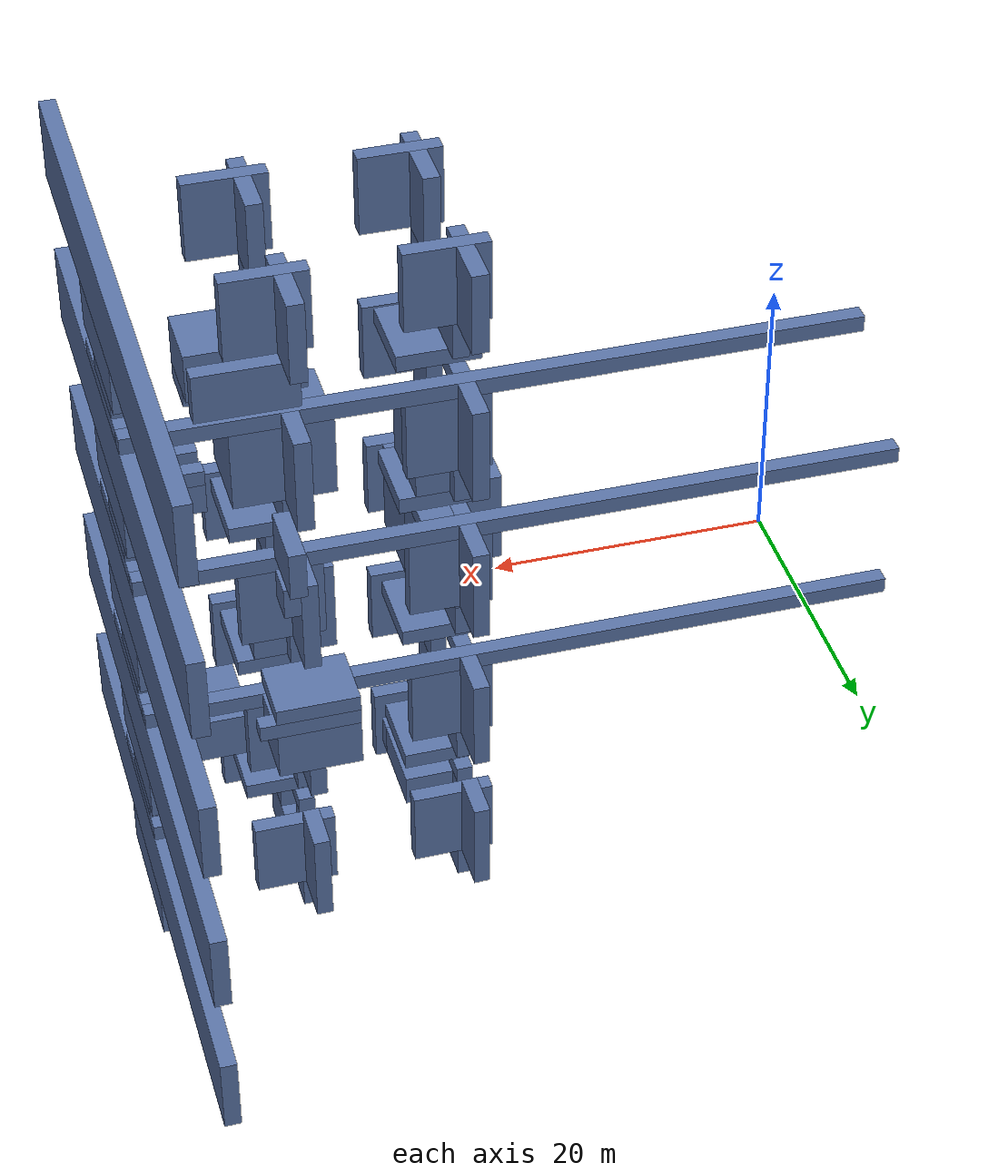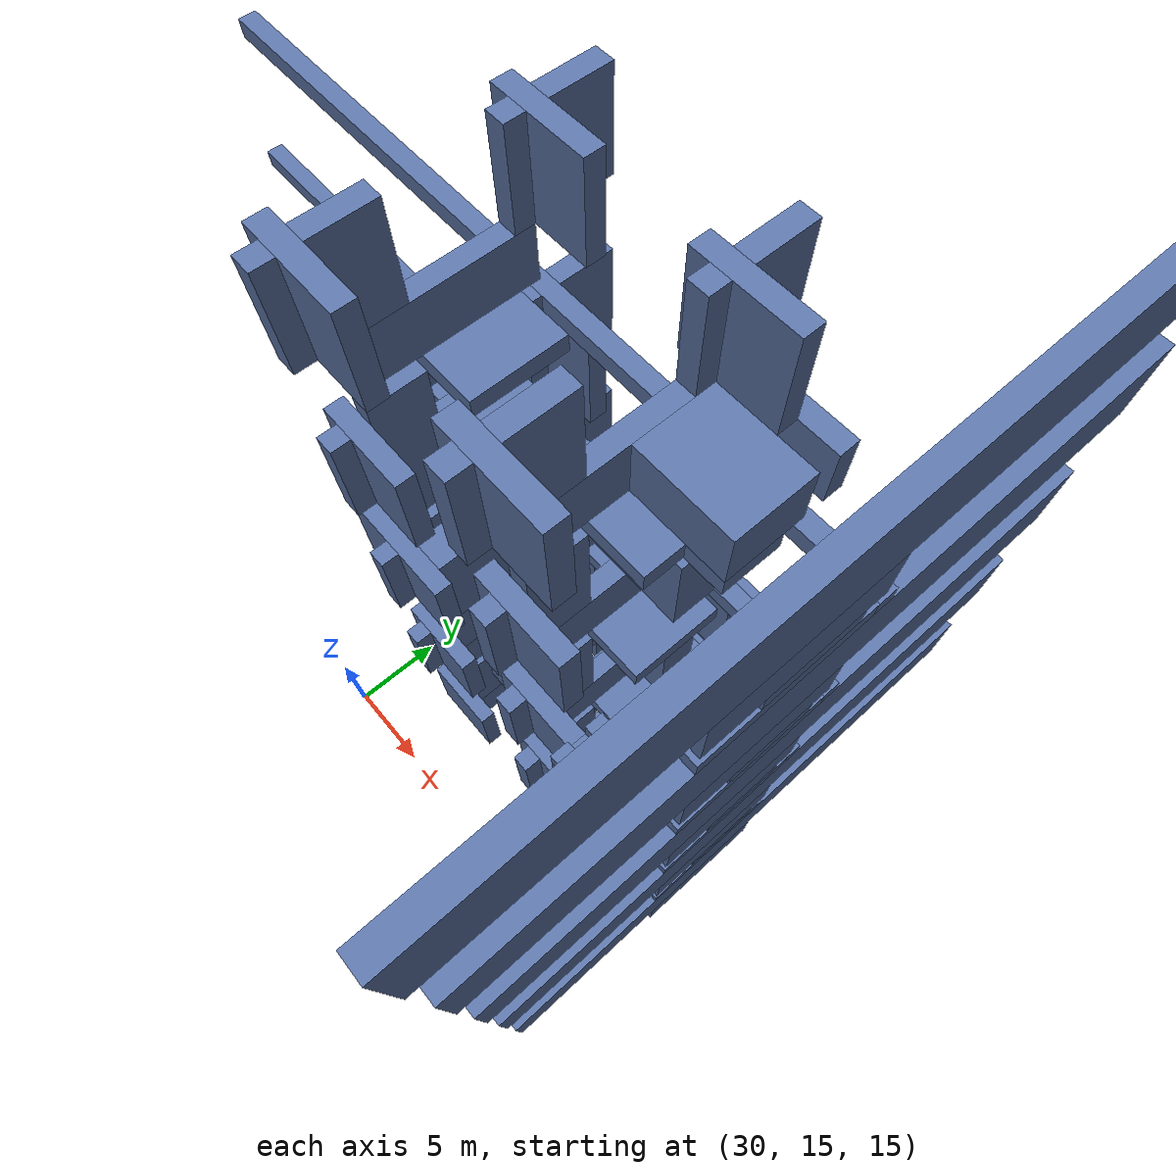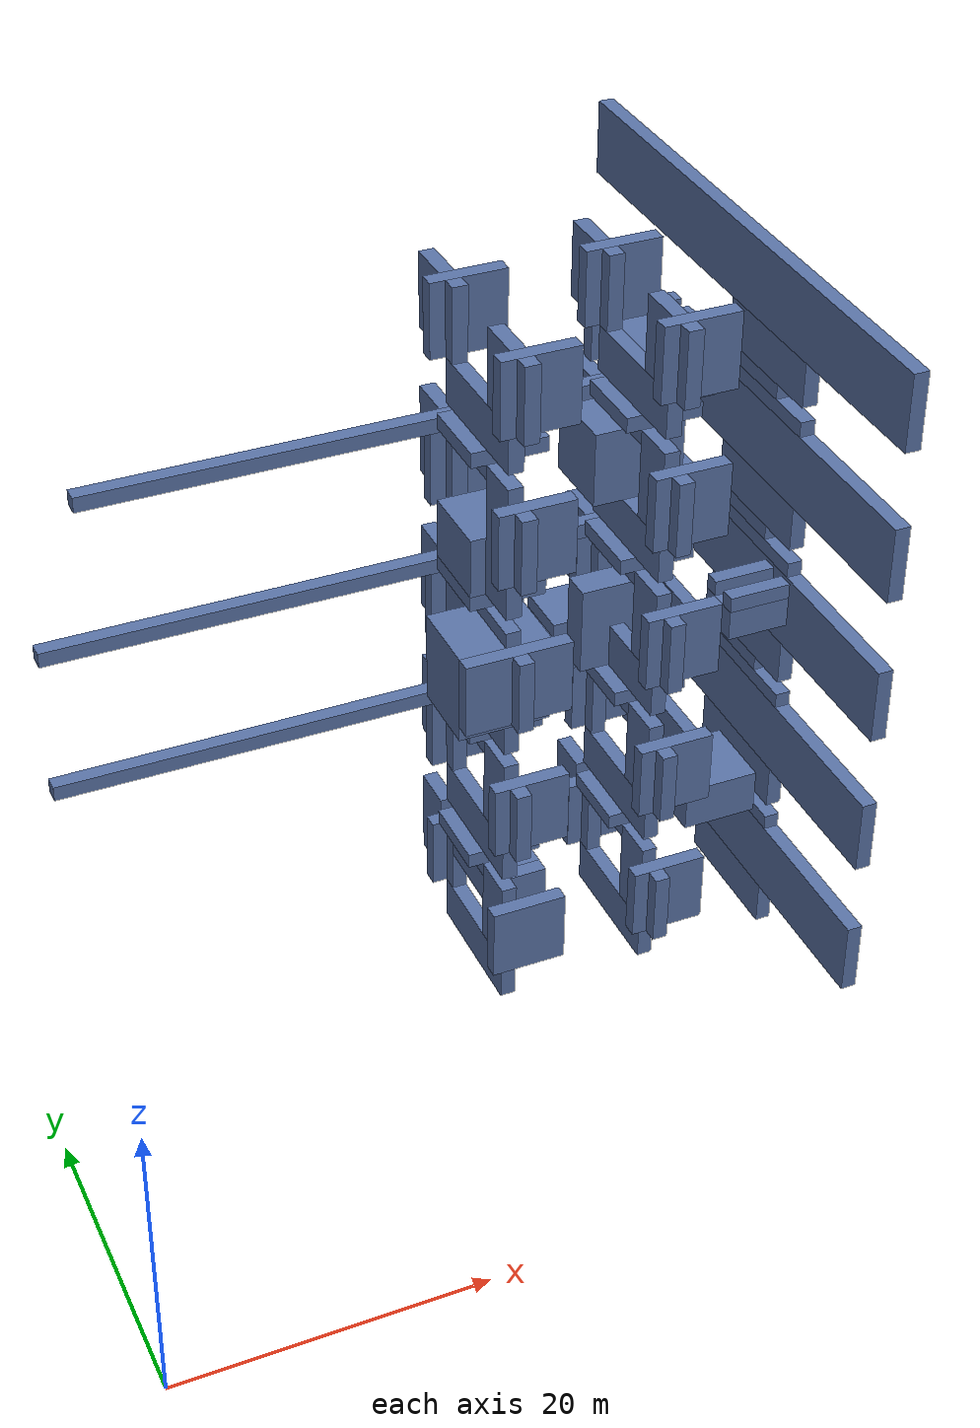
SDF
<sdf version="1.7">
 <world name="default">
  <model name="racer_env">
   <static>1</static>
   <link name="b80">
    <pose>27.000 30.500 19.500 0 0 0</pose>
    <collision name="c"><geometry><box><size>46.000 1.000 1.000</size></box></geometry></collision>
    <visual name="v">
     <geometry><box><size>46.000 1.000 1.000</size></box></geometry>
     <material><ambient>0.30 0.38 0.55 1</ambient><diffuse>0.35 0.45 0.65 1</diffuse></material>
    </visual>
   </link>
   <link name="b81">
    <pose>27.000 30.500 29.500 0 0 0</pose>
    <collision name="c"><geometry><box><size>46.000 1.000 1.000</size></box></geometry></collision>
    <visual name="v">
     <geometry><box><size>46.000 1.000 1.000</size></box></geometry>
     <material><ambient>0.30 0.38 0.55 1</ambient><diffuse>0.35 0.45 0.65 1</diffuse></material>
    </visual>
   </link>
   <link name="b102">
    <pose>28.500 30.500 39.500 0 0 0</pose>
    <collision name="c"><geometry><box><size>43.000 1.000 1.000</size></box></geometry></collision>
    <visual name="v">
     <geometry><box><size>43.000 1.000 1.000</size></box></geometry>
     <material><ambient>0.30 0.38 0.55 1</ambient><diffuse>0.35 0.45 0.65 1</diffuse></material>
    </visual>
   </link>
   <link name="b390">
    <pose>30.500 20.500 26.500 0 0 0</pose>
    <collision name="c"><geometry><box><size>7.000 1.000 5.000</size></box></geometry></collision>
    <visual name="v">
     <geometry><box><size>7.000 1.000 5.000</size></box></geometry>
     <material><ambient>0.30 0.38 0.55 1</ambient><diffuse>0.35 0.45 0.65 1</diffuse></material>
    </visual>
   </link>
   <link name="b391">
    <pose>30.000 23.500 26.000 0 0 0</pose>
    <collision name="c"><geometry><box><size>6.000 5.000 6.000</size></box></geometry></collision>
    <visual name="v">
     <geometry><box><size>6.000 5.000 6.000</size></box></geometry>
     <material><ambient>0.30 0.38 0.55 1</ambient><diffuse>0.35 0.45 0.65 1</diffuse></material>
    </visual>
   </link>
   <link name="b405">
    <pose>31.500 20.500 6.500 0 0 0</pose>
    <collision name="c"><geometry><box><size>5.000 1.000 5.000</size></box></geometry></collision>
    <visual name="v">
     <geometry><box><size>5.000 1.000 5.000</size></box></geometry>
     <material><ambient>0.30 0.38 0.55 1</ambient><diffuse>0.35 0.45 0.65 1</diffuse></material>
    </visual>
   </link>
   <link name="b406">
    <pose>31.500 20.500 16.500 0 0 0</pose>
    <collision name="c"><geometry><box><size>5.000 1.000 5.000</size></box></geometry></collision>
    <visual name="v">
     <geometry><box><size>5.000 1.000 5.000</size></box></geometry>
     <material><ambient>0.30 0.38 0.55 1</ambient><diffuse>0.35 0.45 0.65 1</diffuse></material>
    </visual>
   </link>
   <link name="b407">
    <pose>31.500 20.500 36.500 0 0 0</pose>
    <collision name="c"><geometry><box><size>5.000 1.000 5.000</size></box></geometry></collision>
    <visual name="v">
     <geometry><box><size>5.000 1.000 5.000</size></box></geometry>
     <material><ambient>0.30 0.38 0.55 1</ambient><diffuse>0.35 0.45 0.65 1</diffuse></material>
    </visual>
   </link>
   <link name="b408">
    <pose>31.500 20.500 46.500 0 0 0</pose>
    <collision name="c"><geometry><box><size>5.000 1.000 5.000</size></box></geometry></collision>
    <visual name="v">
     <geometry><box><size>5.000 1.000 5.000</size></box></geometry>
     <material><ambient>0.30 0.38 0.55 1</ambient><diffuse>0.35 0.45 0.65 1</diffuse></material>
    </visual>
   </link>
   <link name="b409">
    <pose>31.500 26.500 10.500 0 0 0</pose>
    <collision name="c"><geometry><box><size>5.000 5.000 1.000</size></box></geometry></collision>
    <visual name="v">
     <geometry><box><size>5.000 5.000 1.000</size></box></geometry>
     <material><ambient>0.30 0.38 0.55 1</ambient><diffuse>0.35 0.45 0.65 1</diffuse></material>
    </visual>
   </link>
   <link name="b410">
    <pose>31.500 26.500 20.500 0 0 0</pose>
    <collision name="c"><geometry><box><size>5.000 5.000 1.000</size></box></geometry></collision>
    <visual name="v">
     <geometry><box><size>5.000 5.000 1.000</size></box></geometry>
     <material><ambient>0.30 0.38 0.55 1</ambient><diffuse>0.35 0.45 0.65 1</diffuse></material>
    </visual>
   </link>
   <link name="b411">
    <pose>31.500 26.500 30.500 0 0 0</pose>
    <collision name="c"><geometry><box><size>5.000 5.000 1.000</size></box></geometry></collision>
    <visual name="v">
     <geometry><box><size>5.000 5.000 1.000</size></box></geometry>
     <material><ambient>0.30 0.38 0.55 1</ambient><diffuse>0.35 0.45 0.65 1</diffuse></material>
    </visual>
   </link>
   <link name="b412">
    <pose>31.000 26.500 33.000 0 0 0</pose>
    <collision name="c"><geometry><box><size>4.000 5.000 4.000</size></box></geometry></collision>
    <visual name="v">
     <geometry><box><size>4.000 5.000 4.000</size></box></geometry>
     <material><ambient>0.30 0.38 0.55 1</ambient><diffuse>0.35 0.45 0.65 1</diffuse></material>
    </visual>
   </link>
   <link name="b413">
    <pose>31.500 26.500 40.500 0 0 0</pose>
    <collision name="c"><geometry><box><size>5.000 5.000 1.000</size></box></geometry></collision>
    <visual name="v">
     <geometry><box><size>5.000 5.000 1.000</size></box></geometry>
     <material><ambient>0.30 0.38 0.55 1</ambient><diffuse>0.35 0.45 0.65 1</diffuse></material>
    </visual>
   </link>
   <link name="b414">
    <pose>31.500 30.500 6.500 0 0 0</pose>
    <collision name="c"><geometry><box><size>5.000 1.000 5.000</size></box></geometry></collision>
    <visual name="v">
     <geometry><box><size>5.000 1.000 5.000</size></box></geometry>
     <material><ambient>0.30 0.38 0.55 1</ambient><diffuse>0.35 0.45 0.65 1</diffuse></material>
    </visual>
   </link>
   <link name="b415">
    <pose>31.500 30.500 16.500 0 0 0</pose>
    <collision name="c"><geometry><box><size>5.000 1.000 5.000</size></box></geometry></collision>
    <visual name="v">
     <geometry><box><size>5.000 1.000 5.000</size></box></geometry>
     <material><ambient>0.30 0.38 0.55 1</ambient><diffuse>0.35 0.45 0.65 1</diffuse></material>
    </visual>
   </link>
   <link name="b416">
    <pose>31.500 30.500 26.500 0 0 0</pose>
    <collision name="c"><geometry><box><size>5.000 1.000 5.000</size></box></geometry></collision>
    <visual name="v">
     <geometry><box><size>5.000 1.000 5.000</size></box></geometry>
     <material><ambient>0.30 0.38 0.55 1</ambient><diffuse>0.35 0.45 0.65 1</diffuse></material>
    </visual>
   </link>
   <link name="b417">
    <pose>31.500 30.500 36.500 0 0 0</pose>
    <collision name="c"><geometry><box><size>5.000 1.000 5.000</size></box></geometry></collision>
    <visual name="v">
     <geometry><box><size>5.000 1.000 5.000</size></box></geometry>
     <material><ambient>0.30 0.38 0.55 1</ambient><diffuse>0.35 0.45 0.65 1</diffuse></material>
    </visual>
   </link>
   <link name="b418">
    <pose>31.500 30.500 46.500 0 0 0</pose>
    <collision name="c"><geometry><box><size>5.000 1.000 5.000</size></box></geometry></collision>
    <visual name="v">
     <geometry><box><size>5.000 1.000 5.000</size></box></geometry>
     <material><ambient>0.30 0.38 0.55 1</ambient><diffuse>0.35 0.45 0.65 1</diffuse></material>
    </visual>
   </link>
   <link name="b468">
    <pose>30.500 19.500 16.500 0 0 0</pose>
    <collision name="c"><geometry><box><size>1.000 1.000 5.000</size></box></geometry></collision>
    <visual name="v">
     <geometry><box><size>1.000 1.000 5.000</size></box></geometry>
     <material><ambient>0.30 0.38 0.55 1</ambient><diffuse>0.35 0.45 0.65 1</diffuse></material>
    </visual>
   </link>
   <link name="b469">
    <pose>30.500 19.500 26.500 0 0 0</pose>
    <collision name="c"><geometry><box><size>1.000 1.000 5.000</size></box></geometry></collision>
    <visual name="v">
     <geometry><box><size>1.000 1.000 5.000</size></box></geometry>
     <material><ambient>0.30 0.38 0.55 1</ambient><diffuse>0.35 0.45 0.65 1</diffuse></material>
    </visual>
   </link>
   <link name="b470">
    <pose>30.500 19.500 36.500 0 0 0</pose>
    <collision name="c"><geometry><box><size>1.000 1.000 5.000</size></box></geometry></collision>
    <visual name="v">
     <geometry><box><size>1.000 1.000 5.000</size></box></geometry>
     <material><ambient>0.30 0.38 0.55 1</ambient><diffuse>0.35 0.45 0.65 1</diffuse></material>
    </visual>
   </link>
   <link name="b471">
    <pose>30.500 19.500 46.500 0 0 0</pose>
    <collision name="c"><geometry><box><size>1.000 1.000 5.000</size></box></geometry></collision>
    <visual name="v">
     <geometry><box><size>1.000 1.000 5.000</size></box></geometry>
     <material><ambient>0.30 0.38 0.55 1</ambient><diffuse>0.35 0.45 0.65 1</diffuse></material>
    </visual>
   </link>
   <link name="b472">
    <pose>30.500 25.500 2.500 0 0 0</pose>
    <collision name="c"><geometry><box><size>1.000 9.000 3.000</size></box></geometry></collision>
    <visual name="v">
     <geometry><box><size>1.000 9.000 3.000</size></box></geometry>
     <material><ambient>0.30 0.38 0.55 1</ambient><diffuse>0.35 0.45 0.65 1</diffuse></material>
    </visual>
   </link>
   <link name="b473">
    <pose>30.500 22.500 7.000 0 0 0</pose>
    <collision name="c"><geometry><box><size>1.000 3.000 6.000</size></box></geometry></collision>
    <visual name="v">
     <geometry><box><size>1.000 3.000 6.000</size></box></geometry>
     <material><ambient>0.30 0.38 0.55 1</ambient><diffuse>0.35 0.45 0.65 1</diffuse></material>
    </visual>
   </link>
   <link name="b474">
    <pose>30.500 25.500 12.500 0 0 0</pose>
    <collision name="c"><geometry><box><size>1.000 9.000 3.000</size></box></geometry></collision>
    <visual name="v">
     <geometry><box><size>1.000 9.000 3.000</size></box></geometry>
     <material><ambient>0.30 0.38 0.55 1</ambient><diffuse>0.35 0.45 0.65 1</diffuse></material>
    </visual>
   </link>
   <link name="b475">
    <pose>30.500 22.500 17.000 0 0 0</pose>
    <collision name="c"><geometry><box><size>1.000 3.000 6.000</size></box></geometry></collision>
    <visual name="v">
     <geometry><box><size>1.000 3.000 6.000</size></box></geometry>
     <material><ambient>0.30 0.38 0.55 1</ambient><diffuse>0.35 0.45 0.65 1</diffuse></material>
    </visual>
   </link>
   <link name="b476">
    <pose>30.500 25.500 22.000 0 0 0</pose>
    <collision name="c"><geometry><box><size>1.000 9.000 2.000</size></box></geometry></collision>
    <visual name="v">
     <geometry><box><size>1.000 9.000 2.000</size></box></geometry>
     <material><ambient>0.30 0.38 0.55 1</ambient><diffuse>0.35 0.45 0.65 1</diffuse></material>
    </visual>
   </link>
   <link name="b477">
    <pose>30.500 25.500 29.500 0 0 0</pose>
    <collision name="c"><geometry><box><size>1.000 9.000 1.000</size></box></geometry></collision>
    <visual name="v">
     <geometry><box><size>1.000 9.000 1.000</size></box></geometry>
     <material><ambient>0.30 0.38 0.55 1</ambient><diffuse>0.35 0.45 0.65 1</diffuse></material>
    </visual>
   </link>
   <link name="b478">
    <pose>30.500 22.500 35.500 0 0 0</pose>
    <collision name="c"><geometry><box><size>1.000 3.000 9.000</size></box></geometry></collision>
    <visual name="v">
     <geometry><box><size>1.000 3.000 9.000</size></box></geometry>
     <material><ambient>0.30 0.38 0.55 1</ambient><diffuse>0.35 0.45 0.65 1</diffuse></material>
    </visual>
   </link>
   <link name="b479">
    <pose>30.500 25.500 42.500 0 0 0</pose>
    <collision name="c"><geometry><box><size>1.000 9.000 3.000</size></box></geometry></collision>
    <visual name="v">
     <geometry><box><size>1.000 9.000 3.000</size></box></geometry>
     <material><ambient>0.30 0.38 0.55 1</ambient><diffuse>0.35 0.45 0.65 1</diffuse></material>
    </visual>
   </link>
   <link name="b480">
    <pose>30.500 22.500 46.500 0 0 0</pose>
    <collision name="c"><geometry><box><size>1.000 3.000 5.000</size></box></geometry></collision>
    <visual name="v">
     <geometry><box><size>1.000 3.000 5.000</size></box></geometry>
     <material><ambient>0.30 0.38 0.55 1</ambient><diffuse>0.35 0.45 0.65 1</diffuse></material>
    </visual>
   </link>
   <link name="b481">
    <pose>32.000 26.500 8.000 0 0 0</pose>
    <collision name="c"><geometry><box><size>4.000 5.000 2.000</size></box></geometry></collision>
    <visual name="v">
     <geometry><box><size>4.000 5.000 2.000</size></box></geometry>
     <material><ambient>0.30 0.38 0.55 1</ambient><diffuse>0.35 0.45 0.65 1</diffuse></material>
    </visual>
   </link>
   <link name="b482">
    <pose>30.500 27.000 9.500 0 0 0</pose>
    <collision name="c"><geometry><box><size>1.000 6.000 1.000</size></box></geometry></collision>
    <visual name="v">
     <geometry><box><size>1.000 6.000 1.000</size></box></geometry>
     <material><ambient>0.30 0.38 0.55 1</ambient><diffuse>0.35 0.45 0.65 1</diffuse></material>
    </visual>
   </link>
   <link name="b483">
    <pose>30.500 27.000 19.500 0 0 0</pose>
    <collision name="c"><geometry><box><size>1.000 6.000 1.000</size></box></geometry></collision>
    <visual name="v">
     <geometry><box><size>1.000 6.000 1.000</size></box></geometry>
     <material><ambient>0.30 0.38 0.55 1</ambient><diffuse>0.35 0.45 0.65 1</diffuse></material>
    </visual>
   </link>
   <link name="b484">
    <pose>30.500 27.000 39.500 0 0 0</pose>
    <collision name="c"><geometry><box><size>1.000 6.000 1.000</size></box></geometry></collision>
    <visual name="v">
     <geometry><box><size>1.000 6.000 1.000</size></box></geometry>
     <material><ambient>0.30 0.38 0.55 1</ambient><diffuse>0.35 0.45 0.65 1</diffuse></material>
    </visual>
   </link>
   <link name="b485">
    <pose>30.500 28.000 23.500 0 0 0</pose>
    <collision name="c"><geometry><box><size>1.000 4.000 1.000</size></box></geometry></collision>
    <visual name="v">
     <geometry><box><size>1.000 4.000 1.000</size></box></geometry>
     <material><ambient>0.30 0.38 0.55 1</ambient><diffuse>0.35 0.45 0.65 1</diffuse></material>
    </visual>
   </link>
   <link name="b486">
    <pose>31.500 28.000 27.000 0 0 0</pose>
    <collision name="c"><geometry><box><size>3.000 4.000 4.000</size></box></geometry></collision>
    <visual name="v">
     <geometry><box><size>3.000 4.000 4.000</size></box></geometry>
     <material><ambient>0.30 0.38 0.55 1</ambient><diffuse>0.35 0.45 0.65 1</diffuse></material>
    </visual>
   </link>
   <link name="b487">
    <pose>30.500 29.500 6.500 0 0 0</pose>
    <collision name="c"><geometry><box><size>1.000 1.000 5.000</size></box></geometry></collision>
    <visual name="v">
     <geometry><box><size>1.000 1.000 5.000</size></box></geometry>
     <material><ambient>0.30 0.38 0.55 1</ambient><diffuse>0.35 0.45 0.65 1</diffuse></material>
    </visual>
   </link>
   <link name="b488">
    <pose>30.500 29.500 16.500 0 0 0</pose>
    <collision name="c"><geometry><box><size>1.000 1.000 5.000</size></box></geometry></collision>
    <visual name="v">
     <geometry><box><size>1.000 1.000 5.000</size></box></geometry>
     <material><ambient>0.30 0.38 0.55 1</ambient><diffuse>0.35 0.45 0.65 1</diffuse></material>
    </visual>
   </link>
   <link name="b489">
    <pose>30.500 29.500 24.500 0 0 0</pose>
    <collision name="c"><geometry><box><size>1.000 1.000 1.000</size></box></geometry></collision>
    <visual name="v">
     <geometry><box><size>1.000 1.000 1.000</size></box></geometry>
     <material><ambient>0.30 0.38 0.55 1</ambient><diffuse>0.35 0.45 0.65 1</diffuse></material>
    </visual>
   </link>
   <link name="b490">
    <pose>30.500 29.500 35.000 0 0 0</pose>
    <collision name="c"><geometry><box><size>1.000 1.000 8.000</size></box></geometry></collision>
    <visual name="v">
     <geometry><box><size>1.000 1.000 8.000</size></box></geometry>
     <material><ambient>0.30 0.38 0.55 1</ambient><diffuse>0.35 0.45 0.65 1</diffuse></material>
    </visual>
   </link>
   <link name="b491">
    <pose>30.500 29.500 46.500 0 0 0</pose>
    <collision name="c"><geometry><box><size>1.000 1.000 5.000</size></box></geometry></collision>
    <visual name="v">
     <geometry><box><size>1.000 1.000 5.000</size></box></geometry>
     <material><ambient>0.30 0.38 0.55 1</ambient><diffuse>0.35 0.45 0.65 1</diffuse></material>
    </visual>
   </link>
   <link name="b493">
    <pose>30.500 32.500 7.000 0 0 0</pose>
    <collision name="c"><geometry><box><size>1.000 3.000 6.000</size></box></geometry></collision>
    <visual name="v">
     <geometry><box><size>1.000 3.000 6.000</size></box></geometry>
     <material><ambient>0.30 0.38 0.55 1</ambient><diffuse>0.35 0.45 0.65 1</diffuse></material>
    </visual>
   </link>
   <link name="b495">
    <pose>30.500 32.500 17.000 0 0 0</pose>
    <collision name="c"><geometry><box><size>1.000 3.000 6.000</size></box></geometry></collision>
    <visual name="v">
     <geometry><box><size>1.000 3.000 6.000</size></box></geometry>
     <material><ambient>0.30 0.38 0.55 1</ambient><diffuse>0.35 0.45 0.65 1</diffuse></material>
    </visual>
   </link>
   <link name="b497">
    <pose>30.500 32.500 27.000 0 0 0</pose>
    <collision name="c"><geometry><box><size>1.000 3.000 6.000</size></box></geometry></collision>
    <visual name="v">
     <geometry><box><size>1.000 3.000 6.000</size></box></geometry>
     <material><ambient>0.30 0.38 0.55 1</ambient><diffuse>0.35 0.45 0.65 1</diffuse></material>
    </visual>
   </link>
   <link name="b499">
    <pose>30.500 32.500 37.000 0 0 0</pose>
    <collision name="c"><geometry><box><size>1.000 3.000 6.000</size></box></geometry></collision>
    <visual name="v">
     <geometry><box><size>1.000 3.000 6.000</size></box></geometry>
     <material><ambient>0.30 0.38 0.55 1</ambient><diffuse>0.35 0.45 0.65 1</diffuse></material>
    </visual>
   </link>
   <link name="b501">
    <pose>30.500 32.500 46.500 0 0 0</pose>
    <collision name="c"><geometry><box><size>1.000 3.000 5.000</size></box></geometry></collision>
    <visual name="v">
     <geometry><box><size>1.000 3.000 5.000</size></box></geometry>
     <material><ambient>0.30 0.38 0.55 1</ambient><diffuse>0.35 0.45 0.65 1</diffuse></material>
    </visual>
   </link>
   <link name="b525">
    <pose>32.500 23.500 8.000 0 0 0</pose>
    <collision name="c"><geometry><box><size>3.000 1.000 2.000</size></box></geometry></collision>
    <visual name="v">
     <geometry><box><size>3.000 1.000 2.000</size></box></geometry>
     <material><ambient>0.30 0.38 0.55 1</ambient><diffuse>0.35 0.45 0.65 1</diffuse></material>
    </visual>
   </link>
   <link name="b526">
    <pose>32.000 27.500 29.500 0 0 0</pose>
    <collision name="c"><geometry><box><size>2.000 5.000 1.000</size></box></geometry></collision>
    <visual name="v">
     <geometry><box><size>2.000 5.000 1.000</size></box></geometry>
     <material><ambient>0.30 0.38 0.55 1</ambient><diffuse>0.35 0.45 0.65 1</diffuse></material>
    </visual>
   </link>
   <link name="b529">
    <pose>41.000 28.500 36.500 0 0 0</pose>
    <collision name="c"><geometry><box><size>6.000 5.000 5.000</size></box></geometry></collision>
    <visual name="v">
     <geometry><box><size>6.000 5.000 5.000</size></box></geometry>
     <material><ambient>0.30 0.38 0.55 1</ambient><diffuse>0.35 0.45 0.65 1</diffuse></material>
    </visual>
   </link>
   <link name="b530">
    <pose>40.500 28.000 24.000 0 0 0</pose>
    <collision name="c"><geometry><box><size>5.000 2.000 6.000</size></box></geometry></collision>
    <visual name="v">
     <geometry><box><size>5.000 2.000 6.000</size></box></geometry>
     <material><ambient>0.30 0.38 0.55 1</ambient><diffuse>0.35 0.45 0.65 1</diffuse></material>
    </visual>
   </link>
   <link name="b531">
    <pose>40.500 33.000 18.500 0 0 0</pose>
    <collision name="c"><geometry><box><size>5.000 4.000 3.000</size></box></geometry></collision>
    <visual name="v">
     <geometry><box><size>5.000 4.000 3.000</size></box></geometry>
     <material><ambient>0.30 0.38 0.55 1</ambient><diffuse>0.35 0.45 0.65 1</diffuse></material>
    </visual>
   </link>
   <link name="b532">
    <pose>40.500 33.000 21.500 0 0 0</pose>
    <collision name="c"><geometry><box><size>5.000 4.000 1.000</size></box></geometry></collision>
    <visual name="v">
     <geometry><box><size>5.000 4.000 1.000</size></box></geometry>
     <material><ambient>0.30 0.38 0.55 1</ambient><diffuse>0.35 0.45 0.65 1</diffuse></material>
    </visual>
   </link>
   <link name="b533">
    <pose>41.000 34.500 20.500 0 0 0</pose>
    <collision name="c"><geometry><box><size>6.000 1.000 1.000</size></box></geometry></collision>
    <visual name="v">
     <geometry><box><size>6.000 1.000 1.000</size></box></geometry>
     <material><ambient>0.30 0.38 0.55 1</ambient><diffuse>0.35 0.45 0.65 1</diffuse></material>
    </visual>
   </link>
   <link name="b547">
    <pose>41.500 20.500 6.500 0 0 0</pose>
    <collision name="c"><geometry><box><size>5.000 1.000 5.000</size></box></geometry></collision>
    <visual name="v">
     <geometry><box><size>5.000 1.000 5.000</size></box></geometry>
     <material><ambient>0.30 0.38 0.55 1</ambient><diffuse>0.35 0.45 0.65 1</diffuse></material>
    </visual>
   </link>
   <link name="b548">
    <pose>41.500 20.500 16.500 0 0 0</pose>
    <collision name="c"><geometry><box><size>5.000 1.000 5.000</size></box></geometry></collision>
    <visual name="v">
     <geometry><box><size>5.000 1.000 5.000</size></box></geometry>
     <material><ambient>0.30 0.38 0.55 1</ambient><diffuse>0.35 0.45 0.65 1</diffuse></material>
    </visual>
   </link>
   <link name="b549">
    <pose>41.500 20.500 26.500 0 0 0</pose>
    <collision name="c"><geometry><box><size>5.000 1.000 5.000</size></box></geometry></collision>
    <visual name="v">
     <geometry><box><size>5.000 1.000 5.000</size></box></geometry>
     <material><ambient>0.30 0.38 0.55 1</ambient><diffuse>0.35 0.45 0.65 1</diffuse></material>
    </visual>
   </link>
   <link name="b550">
    <pose>41.500 20.500 36.500 0 0 0</pose>
    <collision name="c"><geometry><box><size>5.000 1.000 5.000</size></box></geometry></collision>
    <visual name="v">
     <geometry><box><size>5.000 1.000 5.000</size></box></geometry>
     <material><ambient>0.30 0.38 0.55 1</ambient><diffuse>0.35 0.45 0.65 1</diffuse></material>
    </visual>
   </link>
   <link name="b551">
    <pose>41.500 20.500 46.500 0 0 0</pose>
    <collision name="c"><geometry><box><size>5.000 1.000 5.000</size></box></geometry></collision>
    <visual name="v">
     <geometry><box><size>5.000 1.000 5.000</size></box></geometry>
     <material><ambient>0.30 0.38 0.55 1</ambient><diffuse>0.35 0.45 0.65 1</diffuse></material>
    </visual>
   </link>
   <link name="b552">
    <pose>41.500 26.500 10.500 0 0 0</pose>
    <collision name="c"><geometry><box><size>5.000 5.000 1.000</size></box></geometry></collision>
    <visual name="v">
     <geometry><box><size>5.000 5.000 1.000</size></box></geometry>
     <material><ambient>0.30 0.38 0.55 1</ambient><diffuse>0.35 0.45 0.65 1</diffuse></material>
    </visual>
   </link>
   <link name="b553">
    <pose>41.500 26.500 20.500 0 0 0</pose>
    <collision name="c"><geometry><box><size>5.000 5.000 1.000</size></box></geometry></collision>
    <visual name="v">
     <geometry><box><size>5.000 5.000 1.000</size></box></geometry>
     <material><ambient>0.30 0.38 0.55 1</ambient><diffuse>0.35 0.45 0.65 1</diffuse></material>
    </visual>
   </link>
   <link name="b554">
    <pose>41.500 26.500 30.500 0 0 0</pose>
    <collision name="c"><geometry><box><size>5.000 5.000 1.000</size></box></geometry></collision>
    <visual name="v">
     <geometry><box><size>5.000 5.000 1.000</size></box></geometry>
     <material><ambient>0.30 0.38 0.55 1</ambient><diffuse>0.35 0.45 0.65 1</diffuse></material>
    </visual>
   </link>
   <link name="b555">
    <pose>41.500 26.500 40.500 0 0 0</pose>
    <collision name="c"><geometry><box><size>5.000 5.000 1.000</size></box></geometry></collision>
    <visual name="v">
     <geometry><box><size>5.000 5.000 1.000</size></box></geometry>
     <material><ambient>0.30 0.38 0.55 1</ambient><diffuse>0.35 0.45 0.65 1</diffuse></material>
    </visual>
   </link>
   <link name="b556">
    <pose>41.500 30.500 6.500 0 0 0</pose>
    <collision name="c"><geometry><box><size>5.000 1.000 5.000</size></box></geometry></collision>
    <visual name="v">
     <geometry><box><size>5.000 1.000 5.000</size></box></geometry>
     <material><ambient>0.30 0.38 0.55 1</ambient><diffuse>0.35 0.45 0.65 1</diffuse></material>
    </visual>
   </link>
   <link name="b557">
    <pose>41.500 30.500 16.500 0 0 0</pose>
    <collision name="c"><geometry><box><size>5.000 1.000 5.000</size></box></geometry></collision>
    <visual name="v">
     <geometry><box><size>5.000 1.000 5.000</size></box></geometry>
     <material><ambient>0.30 0.38 0.55 1</ambient><diffuse>0.35 0.45 0.65 1</diffuse></material>
    </visual>
   </link>
   <link name="b558">
    <pose>41.500 30.500 26.500 0 0 0</pose>
    <collision name="c"><geometry><box><size>5.000 1.000 5.000</size></box></geometry></collision>
    <visual name="v">
     <geometry><box><size>5.000 1.000 5.000</size></box></geometry>
     <material><ambient>0.30 0.38 0.55 1</ambient><diffuse>0.35 0.45 0.65 1</diffuse></material>
    </visual>
   </link>
   <link name="b559">
    <pose>41.500 30.500 46.500 0 0 0</pose>
    <collision name="c"><geometry><box><size>5.000 1.000 5.000</size></box></geometry></collision>
    <visual name="v">
     <geometry><box><size>5.000 1.000 5.000</size></box></geometry>
     <material><ambient>0.30 0.38 0.55 1</ambient><diffuse>0.35 0.45 0.65 1</diffuse></material>
    </visual>
   </link>
   <link name="b606">
    <pose>40.500 19.500 6.500 0 0 0</pose>
    <collision name="c"><geometry><box><size>1.000 1.000 5.000</size></box></geometry></collision>
    <visual name="v">
     <geometry><box><size>1.000 1.000 5.000</size></box></geometry>
     <material><ambient>0.30 0.38 0.55 1</ambient><diffuse>0.35 0.45 0.65 1</diffuse></material>
    </visual>
   </link>
   <link name="b607">
    <pose>40.500 19.500 16.500 0 0 0</pose>
    <collision name="c"><geometry><box><size>1.000 1.000 5.000</size></box></geometry></collision>
    <visual name="v">
     <geometry><box><size>1.000 1.000 5.000</size></box></geometry>
     <material><ambient>0.30 0.38 0.55 1</ambient><diffuse>0.35 0.45 0.65 1</diffuse></material>
    </visual>
   </link>
   <link name="b608">
    <pose>40.500 19.500 26.500 0 0 0</pose>
    <collision name="c"><geometry><box><size>1.000 1.000 5.000</size></box></geometry></collision>
    <visual name="v">
     <geometry><box><size>1.000 1.000 5.000</size></box></geometry>
     <material><ambient>0.30 0.38 0.55 1</ambient><diffuse>0.35 0.45 0.65 1</diffuse></material>
    </visual>
   </link>
   <link name="b609">
    <pose>40.500 19.500 36.500 0 0 0</pose>
    <collision name="c"><geometry><box><size>1.000 1.000 5.000</size></box></geometry></collision>
    <visual name="v">
     <geometry><box><size>1.000 1.000 5.000</size></box></geometry>
     <material><ambient>0.30 0.38 0.55 1</ambient><diffuse>0.35 0.45 0.65 1</diffuse></material>
    </visual>
   </link>
   <link name="b610">
    <pose>40.500 19.500 46.500 0 0 0</pose>
    <collision name="c"><geometry><box><size>1.000 1.000 5.000</size></box></geometry></collision>
    <visual name="v">
     <geometry><box><size>1.000 1.000 5.000</size></box></geometry>
     <material><ambient>0.30 0.38 0.55 1</ambient><diffuse>0.35 0.45 0.65 1</diffuse></material>
    </visual>
   </link>
   <link name="b611">
    <pose>40.500 25.500 2.500 0 0 0</pose>
    <collision name="c"><geometry><box><size>1.000 9.000 3.000</size></box></geometry></collision>
    <visual name="v">
     <geometry><box><size>1.000 9.000 3.000</size></box></geometry>
     <material><ambient>0.30 0.38 0.55 1</ambient><diffuse>0.35 0.45 0.65 1</diffuse></material>
    </visual>
   </link>
   <link name="b612">
    <pose>40.500 22.500 7.000 0 0 0</pose>
    <collision name="c"><geometry><box><size>1.000 3.000 6.000</size></box></geometry></collision>
    <visual name="v">
     <geometry><box><size>1.000 3.000 6.000</size></box></geometry>
     <material><ambient>0.30 0.38 0.55 1</ambient><diffuse>0.35 0.45 0.65 1</diffuse></material>
    </visual>
   </link>
   <link name="b613">
    <pose>40.500 25.500 12.500 0 0 0</pose>
    <collision name="c"><geometry><box><size>1.000 9.000 3.000</size></box></geometry></collision>
    <visual name="v">
     <geometry><box><size>1.000 9.000 3.000</size></box></geometry>
     <material><ambient>0.30 0.38 0.55 1</ambient><diffuse>0.35 0.45 0.65 1</diffuse></material>
    </visual>
   </link>
   <link name="b614">
    <pose>40.500 22.500 17.000 0 0 0</pose>
    <collision name="c"><geometry><box><size>1.000 3.000 6.000</size></box></geometry></collision>
    <visual name="v">
     <geometry><box><size>1.000 3.000 6.000</size></box></geometry>
     <material><ambient>0.30 0.38 0.55 1</ambient><diffuse>0.35 0.45 0.65 1</diffuse></material>
    </visual>
   </link>
   <link name="b615">
    <pose>40.500 24.000 22.500 0 0 0</pose>
    <collision name="c"><geometry><box><size>1.000 6.000 3.000</size></box></geometry></collision>
    <visual name="v">
     <geometry><box><size>1.000 6.000 3.000</size></box></geometry>
     <material><ambient>0.30 0.38 0.55 1</ambient><diffuse>0.35 0.45 0.65 1</diffuse></material>
    </visual>
   </link>
   <link name="b616">
    <pose>40.500 22.500 27.000 0 0 0</pose>
    <collision name="c"><geometry><box><size>1.000 3.000 6.000</size></box></geometry></collision>
    <visual name="v">
     <geometry><box><size>1.000 3.000 6.000</size></box></geometry>
     <material><ambient>0.30 0.38 0.55 1</ambient><diffuse>0.35 0.45 0.65 1</diffuse></material>
    </visual>
   </link>
   <link name="b617">
    <pose>40.500 25.500 32.500 0 0 0</pose>
    <collision name="c"><geometry><box><size>1.000 9.000 3.000</size></box></geometry></collision>
    <visual name="v">
     <geometry><box><size>1.000 9.000 3.000</size></box></geometry>
     <material><ambient>0.30 0.38 0.55 1</ambient><diffuse>0.35 0.45 0.65 1</diffuse></material>
    </visual>
   </link>
   <link name="b618">
    <pose>40.500 22.500 37.000 0 0 0</pose>
    <collision name="c"><geometry><box><size>1.000 3.000 6.000</size></box></geometry></collision>
    <visual name="v">
     <geometry><box><size>1.000 3.000 6.000</size></box></geometry>
     <material><ambient>0.30 0.38 0.55 1</ambient><diffuse>0.35 0.45 0.65 1</diffuse></material>
    </visual>
   </link>
   <link name="b619">
    <pose>40.500 25.500 42.500 0 0 0</pose>
    <collision name="c"><geometry><box><size>1.000 9.000 3.000</size></box></geometry></collision>
    <visual name="v">
     <geometry><box><size>1.000 9.000 3.000</size></box></geometry>
     <material><ambient>0.30 0.38 0.55 1</ambient><diffuse>0.35 0.45 0.65 1</diffuse></material>
    </visual>
   </link>
   <link name="b620">
    <pose>40.500 22.500 46.500 0 0 0</pose>
    <collision name="c"><geometry><box><size>1.000 3.000 5.000</size></box></geometry></collision>
    <visual name="v">
     <geometry><box><size>1.000 3.000 5.000</size></box></geometry>
     <material><ambient>0.30 0.38 0.55 1</ambient><diffuse>0.35 0.45 0.65 1</diffuse></material>
    </visual>
   </link>
   <link name="b621">
    <pose>40.500 27.000 9.500 0 0 0</pose>
    <collision name="c"><geometry><box><size>1.000 6.000 1.000</size></box></geometry></collision>
    <visual name="v">
     <geometry><box><size>1.000 6.000 1.000</size></box></geometry>
     <material><ambient>0.30 0.38 0.55 1</ambient><diffuse>0.35 0.45 0.65 1</diffuse></material>
    </visual>
   </link>
   <link name="b622">
    <pose>40.500 27.000 19.500 0 0 0</pose>
    <collision name="c"><geometry><box><size>1.000 6.000 1.000</size></box></geometry></collision>
    <visual name="v">
     <geometry><box><size>1.000 6.000 1.000</size></box></geometry>
     <material><ambient>0.30 0.38 0.55 1</ambient><diffuse>0.35 0.45 0.65 1</diffuse></material>
    </visual>
   </link>
   <link name="b623">
    <pose>40.500 27.000 29.500 0 0 0</pose>
    <collision name="c"><geometry><box><size>1.000 6.000 1.000</size></box></geometry></collision>
    <visual name="v">
     <geometry><box><size>1.000 6.000 1.000</size></box></geometry>
     <material><ambient>0.30 0.38 0.55 1</ambient><diffuse>0.35 0.45 0.65 1</diffuse></material>
    </visual>
   </link>
   <link name="b624">
    <pose>40.500 27.000 39.500 0 0 0</pose>
    <collision name="c"><geometry><box><size>1.000 6.000 1.000</size></box></geometry></collision>
    <visual name="v">
     <geometry><box><size>1.000 6.000 1.000</size></box></geometry>
     <material><ambient>0.30 0.38 0.55 1</ambient><diffuse>0.35 0.45 0.65 1</diffuse></material>
    </visual>
   </link>
   <link name="b625">
    <pose>40.500 29.500 6.500 0 0 0</pose>
    <collision name="c"><geometry><box><size>1.000 1.000 5.000</size></box></geometry></collision>
    <visual name="v">
     <geometry><box><size>1.000 1.000 5.000</size></box></geometry>
     <material><ambient>0.30 0.38 0.55 1</ambient><diffuse>0.35 0.45 0.65 1</diffuse></material>
    </visual>
   </link>
   <link name="b626">
    <pose>40.500 29.500 16.500 0 0 0</pose>
    <collision name="c"><geometry><box><size>1.000 1.000 5.000</size></box></geometry></collision>
    <visual name="v">
     <geometry><box><size>1.000 1.000 5.000</size></box></geometry>
     <material><ambient>0.30 0.38 0.55 1</ambient><diffuse>0.35 0.45 0.65 1</diffuse></material>
    </visual>
   </link>
   <link name="b627">
    <pose>40.500 29.500 25.000 0 0 0</pose>
    <collision name="c"><geometry><box><size>1.000 1.000 8.000</size></box></geometry></collision>
    <visual name="v">
     <geometry><box><size>1.000 1.000 8.000</size></box></geometry>
     <material><ambient>0.30 0.38 0.55 1</ambient><diffuse>0.35 0.45 0.65 1</diffuse></material>
    </visual>
   </link>
   <link name="b628">
    <pose>40.500 29.500 46.500 0 0 0</pose>
    <collision name="c"><geometry><box><size>1.000 1.000 5.000</size></box></geometry></collision>
    <visual name="v">
     <geometry><box><size>1.000 1.000 5.000</size></box></geometry>
     <material><ambient>0.30 0.38 0.55 1</ambient><diffuse>0.35 0.45 0.65 1</diffuse></material>
    </visual>
   </link>
   <link name="b630">
    <pose>40.500 32.500 7.000 0 0 0</pose>
    <collision name="c"><geometry><box><size>1.000 3.000 6.000</size></box></geometry></collision>
    <visual name="v">
     <geometry><box><size>1.000 3.000 6.000</size></box></geometry>
     <material><ambient>0.30 0.38 0.55 1</ambient><diffuse>0.35 0.45 0.65 1</diffuse></material>
    </visual>
   </link>
   <link name="b632">
    <pose>40.500 32.500 15.500 0 0 0</pose>
    <collision name="c"><geometry><box><size>1.000 3.000 3.000</size></box></geometry></collision>
    <visual name="v">
     <geometry><box><size>1.000 3.000 3.000</size></box></geometry>
     <material><ambient>0.30 0.38 0.55 1</ambient><diffuse>0.35 0.45 0.65 1</diffuse></material>
    </visual>
   </link>
   <link name="b634">
    <pose>40.500 32.500 27.000 0 0 0</pose>
    <collision name="c"><geometry><box><size>1.000 3.000 6.000</size></box></geometry></collision>
    <visual name="v">
     <geometry><box><size>1.000 3.000 6.000</size></box></geometry>
     <material><ambient>0.30 0.38 0.55 1</ambient><diffuse>0.35 0.45 0.65 1</diffuse></material>
    </visual>
   </link>
   <link name="b636">
    <pose>40.500 32.500 37.000 0 0 0</pose>
    <collision name="c"><geometry><box><size>1.000 3.000 6.000</size></box></geometry></collision>
    <visual name="v">
     <geometry><box><size>1.000 3.000 6.000</size></box></geometry>
     <material><ambient>0.30 0.38 0.55 1</ambient><diffuse>0.35 0.45 0.65 1</diffuse></material>
    </visual>
   </link>
   <link name="b637">
    <pose>43.000 31.500 42.500 0 0 0</pose>
    <collision name="c"><geometry><box><size>6.000 1.000 3.000</size></box></geometry></collision>
    <visual name="v">
     <geometry><box><size>6.000 1.000 3.000</size></box></geometry>
     <material><ambient>0.30 0.38 0.55 1</ambient><diffuse>0.35 0.45 0.65 1</diffuse></material>
    </visual>
   </link>
   <link name="b638">
    <pose>40.500 32.500 46.500 0 0 0</pose>
    <collision name="c"><geometry><box><size>1.000 3.000 5.000</size></box></geometry></collision>
    <visual name="v">
     <geometry><box><size>1.000 3.000 5.000</size></box></geometry>
     <material><ambient>0.30 0.38 0.55 1</ambient><diffuse>0.35 0.45 0.65 1</diffuse></material>
    </visual>
   </link>
   <link name="b666">
    <pose>43.500 28.000 42.500 0 0 0</pose>
    <collision name="c"><geometry><box><size>5.000 4.000 3.000</size></box></geometry></collision>
    <visual name="v">
     <geometry><box><size>5.000 4.000 3.000</size></box></geometry>
     <material><ambient>0.30 0.38 0.55 1</ambient><diffuse>0.35 0.45 0.65 1</diffuse></material>
    </visual>
   </link>
   <link name="b667">
    <pose>41.500 33.000 29.000 0 0 0</pose>
    <collision name="c"><geometry><box><size>1.000 2.000 2.000</size></box></geometry></collision>
    <visual name="v">
     <geometry><box><size>1.000 2.000 2.000</size></box></geometry>
     <material><ambient>0.30 0.38 0.55 1</ambient><diffuse>0.35 0.45 0.65 1</diffuse></material>
    </visual>
   </link>
   <link name="b668">
    <pose>41.500 34.000 32.500 0 0 0</pose>
    <collision name="c"><geometry><box><size>1.000 4.000 3.000</size></box></geometry></collision>
    <visual name="v">
     <geometry><box><size>1.000 4.000 3.000</size></box></geometry>
     <material><ambient>0.30 0.38 0.55 1</ambient><diffuse>0.35 0.45 0.65 1</diffuse></material>
    </visual>
   </link>
   <link name="b669">
    <pose>45.500 23.500 12.500 0 0 0</pose>
    <collision name="c"><geometry><box><size>5.000 5.000 3.000</size></box></geometry></collision>
    <visual name="v">
     <geometry><box><size>5.000 5.000 3.000</size></box></geometry>
     <material><ambient>0.30 0.38 0.55 1</ambient><diffuse>0.35 0.45 0.65 1</diffuse></material>
    </visual>
   </link>
   <link name="b671">
    <pose>46.000 20.500 28.000 0 0 0</pose>
    <collision name="c"><geometry><box><size>4.000 3.000 2.000</size></box></geometry></collision>
    <visual name="v">
     <geometry><box><size>4.000 3.000 2.000</size></box></geometry>
     <material><ambient>0.30 0.38 0.55 1</ambient><diffuse>0.35 0.45 0.65 1</diffuse></material>
    </visual>
   </link>
   <link name="b672">
    <pose>46.000 19.500 29.500 0 0 0</pose>
    <collision name="c"><geometry><box><size>4.000 1.000 1.000</size></box></geometry></collision>
    <visual name="v">
     <geometry><box><size>4.000 1.000 1.000</size></box></geometry>
     <material><ambient>0.30 0.38 0.55 1</ambient><diffuse>0.35 0.45 0.65 1</diffuse></material>
    </visual>
   </link>
   <link name="b673">
    <pose>46.000 21.500 29.500 0 0 0</pose>
    <collision name="c"><geometry><box><size>4.000 1.000 1.000</size></box></geometry></collision>
    <visual name="v">
     <geometry><box><size>4.000 1.000 1.000</size></box></geometry>
     <material><ambient>0.30 0.38 0.55 1</ambient><diffuse>0.35 0.45 0.65 1</diffuse></material>
    </visual>
   </link>
   <link name="b674">
    <pose>45.000 27.500 40.500 0 0 0</pose>
    <collision name="c"><geometry><box><size>2.000 3.000 1.000</size></box></geometry></collision>
    <visual name="v">
     <geometry><box><size>2.000 3.000 1.000</size></box></geometry>
     <material><ambient>0.30 0.38 0.55 1</ambient><diffuse>0.35 0.45 0.65 1</diffuse></material>
    </visual>
   </link>
   <link name="b685">
    <pose>49.500 29.500 6.500 0 0 0</pose>
    <collision name="c"><geometry><box><size>1.000 39.000 5.000</size></box></geometry></collision>
    <visual name="v">
     <geometry><box><size>1.000 39.000 5.000</size></box></geometry>
     <material><ambient>0.30 0.38 0.55 1</ambient><diffuse>0.35 0.45 0.65 1</diffuse></material>
    </visual>
   </link>
   <link name="b686">
    <pose>49.500 29.500 16.500 0 0 0</pose>
    <collision name="c"><geometry><box><size>1.000 39.000 5.000</size></box></geometry></collision>
    <visual name="v">
     <geometry><box><size>1.000 39.000 5.000</size></box></geometry>
     <material><ambient>0.30 0.38 0.55 1</ambient><diffuse>0.35 0.45 0.65 1</diffuse></material>
    </visual>
   </link>
   <link name="b687">
    <pose>49.500 29.500 26.500 0 0 0</pose>
    <collision name="c"><geometry><box><size>1.000 39.000 5.000</size></box></geometry></collision>
    <visual name="v">
     <geometry><box><size>1.000 39.000 5.000</size></box></geometry>
     <material><ambient>0.30 0.38 0.55 1</ambient><diffuse>0.35 0.45 0.65 1</diffuse></material>
    </visual>
   </link>
   <link name="b688">
    <pose>49.500 29.500 36.500 0 0 0</pose>
    <collision name="c"><geometry><box><size>1.000 39.000 5.000</size></box></geometry></collision>
    <visual name="v">
     <geometry><box><size>1.000 39.000 5.000</size></box></geometry>
     <material><ambient>0.30 0.38 0.55 1</ambient><diffuse>0.35 0.45 0.65 1</diffuse></material>
    </visual>
   </link>
   <link name="b689">
    <pose>49.500 29.500 46.500 0 0 0</pose>
    <collision name="c"><geometry><box><size>1.000 39.000 5.000</size></box></geometry></collision>
    <visual name="v">
     <geometry><box><size>1.000 39.000 5.000</size></box></geometry>
     <material><ambient>0.30 0.38 0.55 1</ambient><diffuse>0.35 0.45 0.65 1</diffuse></material>
    </visual>
   </link>
   <link name="b703">
    <pose>49.500 25.500 2.500 0 0 0</pose>
    <collision name="c"><geometry><box><size>1.000 9.000 3.000</size></box></geometry></collision>
    <visual name="v">
     <geometry><box><size>1.000 9.000 3.000</size></box></geometry>
     <material><ambient>0.30 0.38 0.55 1</ambient><diffuse>0.35 0.45 0.65 1</diffuse></material>
    </visual>
   </link>
   <link name="b704">
    <pose>49.500 25.500 9.500 0 0 0</pose>
    <collision name="c"><geometry><box><size>1.000 9.000 1.000</size></box></geometry></collision>
    <visual name="v">
     <geometry><box><size>1.000 9.000 1.000</size></box></geometry>
     <material><ambient>0.30 0.38 0.55 1</ambient><diffuse>0.35 0.45 0.65 1</diffuse></material>
    </visual>
   </link>
   <link name="b705">
    <pose>49.500 25.500 12.500 0 0 0</pose>
    <collision name="c"><geometry><box><size>1.000 9.000 3.000</size></box></geometry></collision>
    <visual name="v">
     <geometry><box><size>1.000 9.000 3.000</size></box></geometry>
     <material><ambient>0.30 0.38 0.55 1</ambient><diffuse>0.35 0.45 0.65 1</diffuse></material>
    </visual>
   </link>
   <link name="b706">
    <pose>49.500 25.500 19.500 0 0 0</pose>
    <collision name="c"><geometry><box><size>1.000 9.000 1.000</size></box></geometry></collision>
    <visual name="v">
     <geometry><box><size>1.000 9.000 1.000</size></box></geometry>
     <material><ambient>0.30 0.38 0.55 1</ambient><diffuse>0.35 0.45 0.65 1</diffuse></material>
    </visual>
   </link>
   <link name="b707">
    <pose>49.500 25.500 22.500 0 0 0</pose>
    <collision name="c"><geometry><box><size>1.000 9.000 3.000</size></box></geometry></collision>
    <visual name="v">
     <geometry><box><size>1.000 9.000 3.000</size></box></geometry>
     <material><ambient>0.30 0.38 0.55 1</ambient><diffuse>0.35 0.45 0.65 1</diffuse></material>
    </visual>
   </link>
   <link name="b708">
    <pose>49.500 25.500 29.500 0 0 0</pose>
    <collision name="c"><geometry><box><size>1.000 9.000 1.000</size></box></geometry></collision>
    <visual name="v">
     <geometry><box><size>1.000 9.000 1.000</size></box></geometry>
     <material><ambient>0.30 0.38 0.55 1</ambient><diffuse>0.35 0.45 0.65 1</diffuse></material>
    </visual>
   </link>
   <link name="b709">
    <pose>49.500 25.500 32.500 0 0 0</pose>
    <collision name="c"><geometry><box><size>1.000 9.000 3.000</size></box></geometry></collision>
    <visual name="v">
     <geometry><box><size>1.000 9.000 3.000</size></box></geometry>
     <material><ambient>0.30 0.38 0.55 1</ambient><diffuse>0.35 0.45 0.65 1</diffuse></material>
    </visual>
   </link>
   <link name="b710">
    <pose>49.500 25.500 39.500 0 0 0</pose>
    <collision name="c"><geometry><box><size>1.000 9.000 1.000</size></box></geometry></collision>
    <visual name="v">
     <geometry><box><size>1.000 9.000 1.000</size></box></geometry>
     <material><ambient>0.30 0.38 0.55 1</ambient><diffuse>0.35 0.45 0.65 1</diffuse></material>
    </visual>
   </link>
   <link name="b711">
    <pose>49.500 25.500 42.500 0 0 0</pose>
    <collision name="c"><geometry><box><size>1.000 9.000 3.000</size></box></geometry></collision>
    <visual name="v">
     <geometry><box><size>1.000 9.000 3.000</size></box></geometry>
     <material><ambient>0.30 0.38 0.55 1</ambient><diffuse>0.35 0.45 0.65 1</diffuse></material>
    </visual>
   </link>
   <link name="b712">
    <pose>49.500 26.500 10.500 0 0 0</pose>
    <collision name="c"><geometry><box><size>1.000 5.000 1.000</size></box></geometry></collision>
    <visual name="v">
     <geometry><box><size>1.000 5.000 1.000</size></box></geometry>
     <material><ambient>0.30 0.38 0.55 1</ambient><diffuse>0.35 0.45 0.65 1</diffuse></material>
    </visual>
   </link>
   <link name="b713">
    <pose>49.500 26.500 20.500 0 0 0</pose>
    <collision name="c"><geometry><box><size>1.000 5.000 1.000</size></box></geometry></collision>
    <visual name="v">
     <geometry><box><size>1.000 5.000 1.000</size></box></geometry>
     <material><ambient>0.30 0.38 0.55 1</ambient><diffuse>0.35 0.45 0.65 1</diffuse></material>
    </visual>
   </link>
   <link name="b714">
    <pose>49.500 26.500 30.500 0 0 0</pose>
    <collision name="c"><geometry><box><size>1.000 5.000 1.000</size></box></geometry></collision>
    <visual name="v">
     <geometry><box><size>1.000 5.000 1.000</size></box></geometry>
     <material><ambient>0.30 0.38 0.55 1</ambient><diffuse>0.35 0.45 0.65 1</diffuse></material>
    </visual>
   </link>
   <link name="b715">
    <pose>49.500 26.500 40.500 0 0 0</pose>
    <collision name="c"><geometry><box><size>1.000 5.000 1.000</size></box></geometry></collision>
    <visual name="v">
     <geometry><box><size>1.000 5.000 1.000</size></box></geometry>
     <material><ambient>0.30 0.38 0.55 1</ambient><diffuse>0.35 0.45 0.65 1</diffuse></material>
    </visual>
   </link>
  </model>
 </world>
</sdf>
